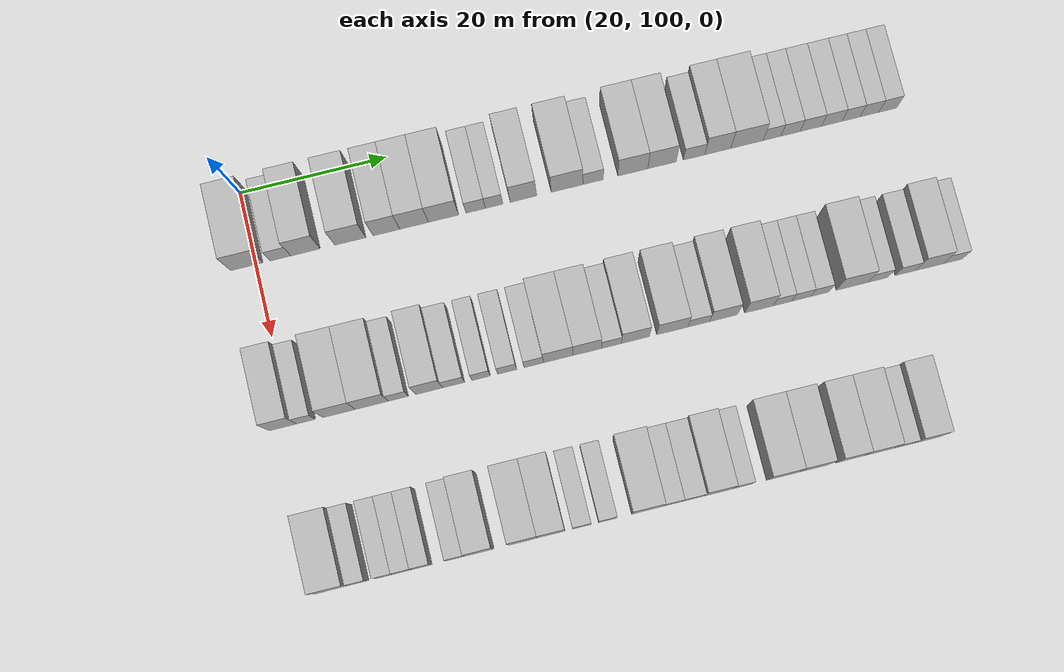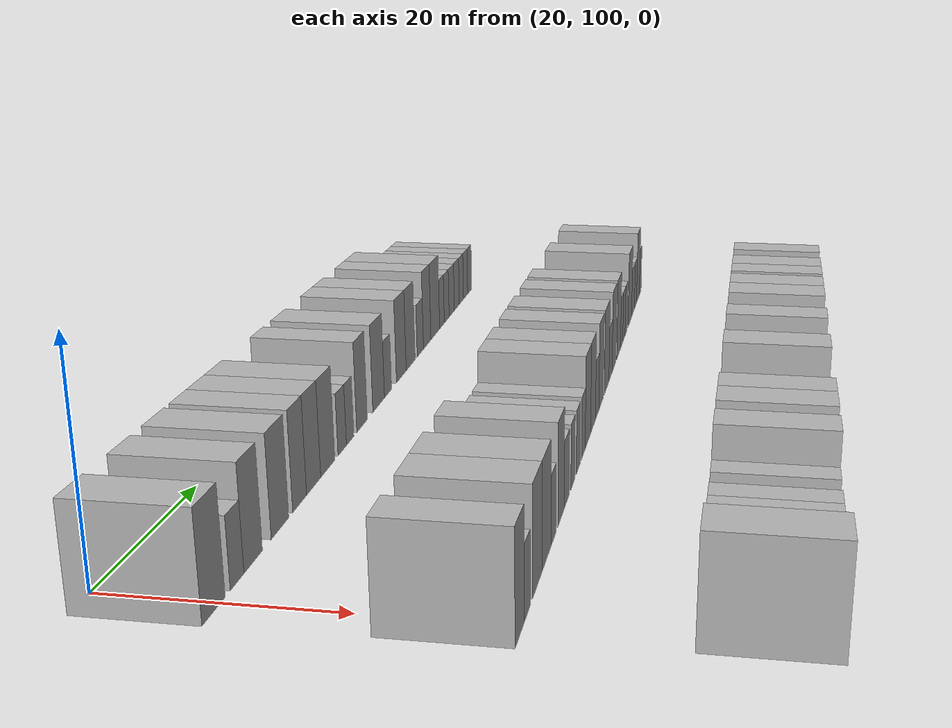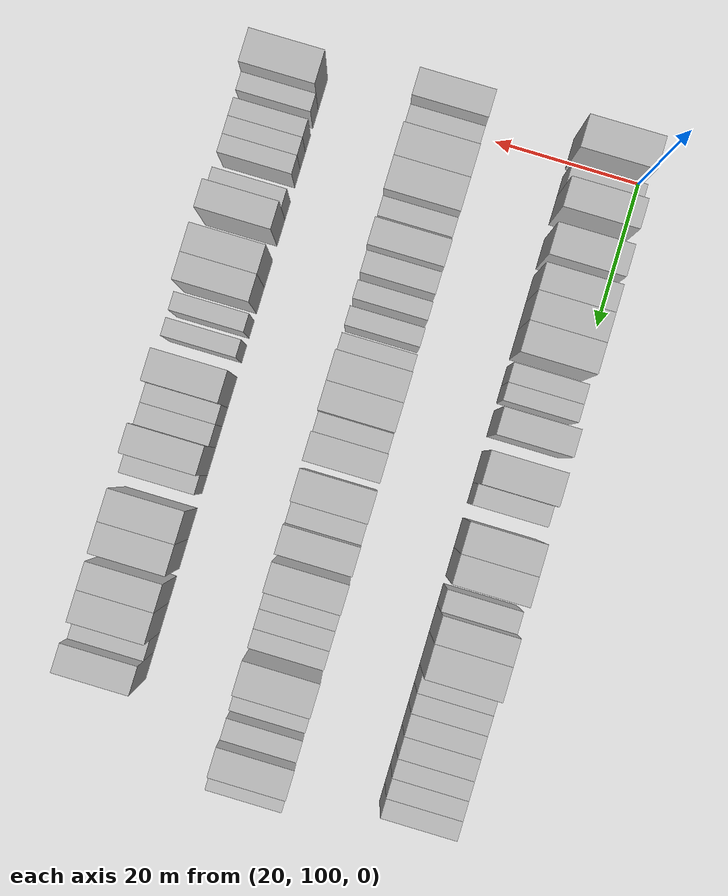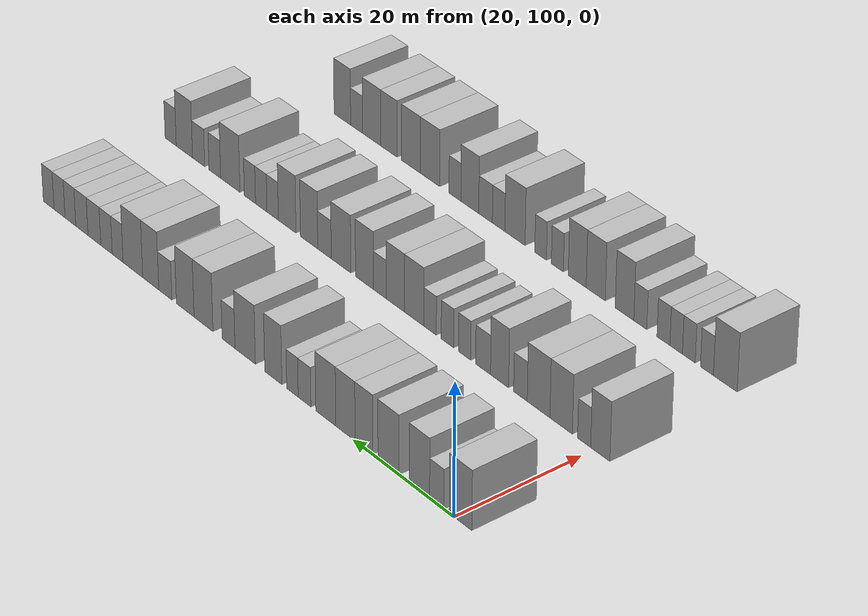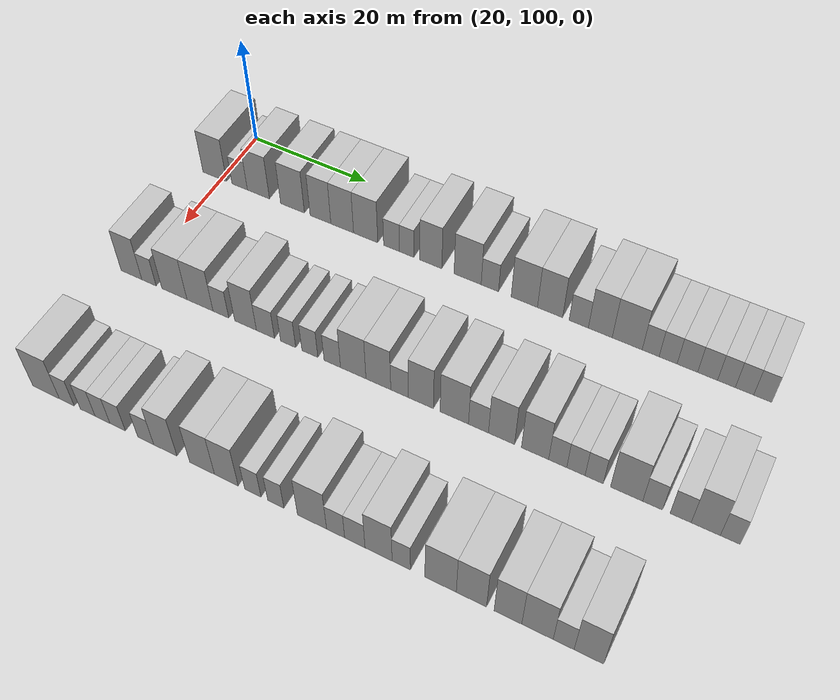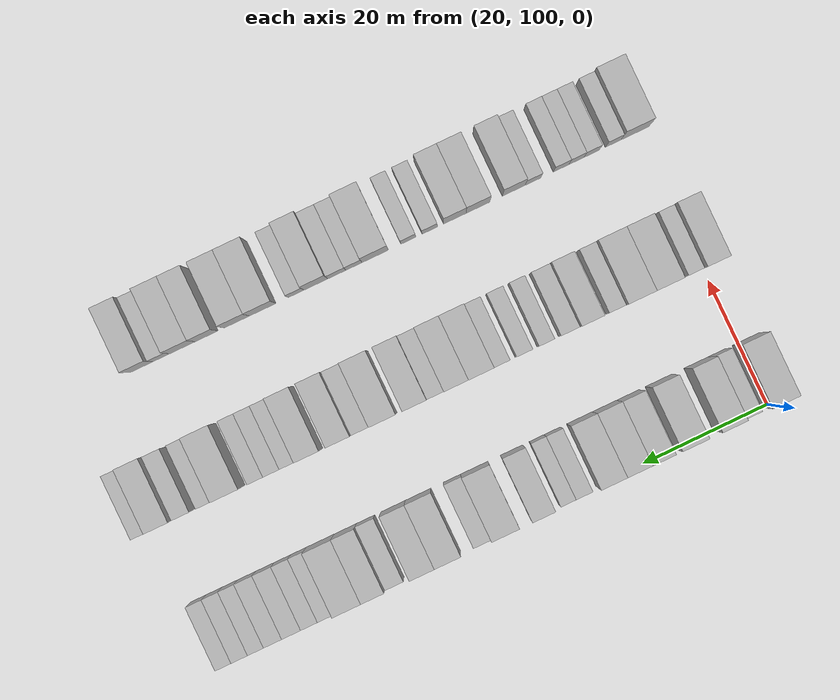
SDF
<sdf version="1.6">
 <world name="default">
  <model name="building_119">
   <static>1</static>
   <pose>25.0000 98.7656 0 0.000000 0.000000 0.000000</pose>
   <link name="link">
    <pose>0 0 4.50 0 0 0</pose>
    <collision name="collision"><geometry><box><size>10.0000 4.3630 9.0000</size></box></geometry></collision>
    <visual name="visual">
     <cast_shadows>0</cast_shadows>
     <geometry><box><size>10.0000 4.3630 9.0000</size></box></geometry>
     <material>
      <script>
       <uri>model://HANNAS_wall/materials/scripts</uri>
       <uri>model://HANNAS_wall/materials/textures</uri>
       <name>vrc/HANNAS_wall</name>
      </script>
     </material>
    </visual>
   </link>
  </model>
  <model name="building_120">
   <static>1</static>
   <pose>25.0000 103.3491 0 0.000000 0.000000 0.000000</pose>
   <link name="link">
    <pose>0 0 3.00 0 0 0</pose>
    <collision name="collision"><geometry><box><size>10.0000 2.8041 6.0000</size></box></geometry></collision>
    <visual name="visual">
     <cast_shadows>0</cast_shadows>
     <geometry><box><size>10.0000 2.8041 6.0000</size></box></geometry>
     <material>
      <script>
       <uri>model://HANNAS_wall/materials/scripts</uri>
       <uri>model://HANNAS_wall/materials/textures</uri>
       <name>vrc/HANNAS_wall</name>
      </script>
     </material>
    </visual>
   </link>
  </model>
  <model name="building_121">
   <static>1</static>
   <pose>25.0000 106.7485 0 0.000000 0.000000 0.000000</pose>
   <link name="link">
    <pose>0 0 4.50 0 0 0</pose>
    <collision name="collision"><geometry><box><size>10.0000 3.9948 9.0000</size></box></geometry></collision>
    <visual name="visual">
     <cast_shadows>0</cast_shadows>
     <geometry><box><size>10.0000 3.9948 9.0000</size></box></geometry>
     <material>
      <script>
       <uri>model://HANNAS_wall/materials/scripts</uri>
       <uri>model://HANNAS_wall/materials/textures</uri>
       <name>vrc/HANNAS_wall</name>
      </script>
     </material>
    </visual>
   </link>
  </model>
  <model name="building_122">
   <static>1</static>
   <pose>25.0000 112.8621 0 0.000000 0.000000 0.000000</pose>
   <link name="link">
    <pose>0 0 4.50 0 0 0</pose>
    <collision name="collision"><geometry><box><size>10.0000 4.2324 9.0000</size></box></geometry></collision>
    <visual name="visual">
     <cast_shadows>0</cast_shadows>
     <geometry><box><size>10.0000 4.2324 9.0000</size></box></geometry>
     <material>
      <script>
       <uri>model://HANNAS_wall/materials/scripts</uri>
       <uri>model://HANNAS_wall/materials/textures</uri>
       <name>vrc/HANNAS_wall</name>
      </script>
     </material>
    </visual>
   </link>
  </model>
  <model name="building_123">
   <static>1</static>
   <pose>25.0000 117.7877 0 0.000000 0.000000 0.000000</pose>
   <link name="link">
    <pose>0 0 4.50 0 0 0</pose>
    <collision name="collision"><geometry><box><size>10.0000 3.6188 9.0000</size></box></geometry></collision>
    <visual name="visual">
     <cast_shadows>0</cast_shadows>
     <geometry><box><size>10.0000 3.6188 9.0000</size></box></geometry>
     <material>
      <script>
       <uri>model://HANNAS_wall/materials/scripts</uri>
       <uri>model://HANNAS_wall/materials/textures</uri>
       <name>vrc/HANNAS_wall</name>
      </script>
     </material>
    </visual>
   </link>
  </model>
  <model name="building_124">
   <static>1</static>
   <pose>25.0000 121.5616 0 0.000000 0.000000 0.000000</pose>
   <link name="link">
    <pose>0 0 4.50 0 0 0</pose>
    <collision name="collision"><geometry><box><size>10.0000 3.9289 9.0000</size></box></geometry></collision>
    <visual name="visual">
     <cast_shadows>0</cast_shadows>
     <geometry><box><size>10.0000 3.9289 9.0000</size></box></geometry>
     <material>
      <script>
       <uri>model://HANNAS_wall/materials/scripts</uri>
       <uri>model://HANNAS_wall/materials/textures</uri>
       <name>vrc/HANNAS_wall</name>
      </script>
     </material>
    </visual>
   </link>
  </model>
  <model name="building_125">
   <static>1</static>
   <pose>25.0000 125.5919 0 0.000000 0.000000 0.000000</pose>
   <link name="link">
    <pose>0 0 4.50 0 0 0</pose>
    <collision name="collision"><geometry><box><size>10.0000 4.1317 9.0000</size></box></geometry></collision>
    <visual name="visual">
     <cast_shadows>0</cast_shadows>
     <geometry><box><size>10.0000 4.1317 9.0000</size></box></geometry>
     <material>
      <script>
       <uri>model://HANNAS_wall/materials/scripts</uri>
       <uri>model://HANNAS_wall/materials/textures</uri>
       <name>vrc/HANNAS_wall</name>
      </script>
     </material>
    </visual>
   </link>
  </model>
  <model name="building_126">
   <static>1</static>
   <pose>25.0000 129.9848 0 0.000000 0.000000 0.000000</pose>
   <link name="link">
    <pose>0 0 3.00 0 0 0</pose>
    <collision name="collision"><geometry><box><size>10.0000 2.6542 6.0000</size></box></geometry></collision>
    <visual name="visual">
     <cast_shadows>0</cast_shadows>
     <geometry><box><size>10.0000 2.6542 6.0000</size></box></geometry>
     <material>
      <script>
       <uri>model://HANNAS_wall/materials/scripts</uri>
       <uri>model://HANNAS_wall/materials/textures</uri>
       <name>vrc/HANNAS_wall</name>
      </script>
     </material>
    </visual>
   </link>
  </model>
  <model name="building_127">
   <static>1</static>
   <pose>25.0000 132.5161 0 0.000000 0.000000 0.000000</pose>
   <link name="link">
    <pose>0 0 3.00 0 0 0</pose>
    <collision name="collision"><geometry><box><size>10.0000 2.4083 6.0000</size></box></geometry></collision>
    <visual name="visual">
     <cast_shadows>0</cast_shadows>
     <geometry><box><size>10.0000 2.4083 6.0000</size></box></geometry>
     <material>
      <script>
       <uri>model://HANNAS_wall/materials/scripts</uri>
       <uri>model://HANNAS_wall/materials/textures</uri>
       <name>vrc/HANNAS_wall</name>
      </script>
     </material>
    </visual>
   </link>
  </model>
  <model name="building_128">
   <static>1</static>
   <pose>25.0000 136.5324 0 0.000000 0.000000 0.000000</pose>
   <link name="link">
    <pose>0 0 4.50 0 0 0</pose>
    <collision name="collision"><geometry><box><size>10.0000 3.6243 9.0000</size></box></geometry></collision>
    <visual name="visual">
     <cast_shadows>0</cast_shadows>
     <geometry><box><size>10.0000 3.6243 9.0000</size></box></geometry>
     <material>
      <script>
       <uri>model://HANNAS_wall/materials/scripts</uri>
       <uri>model://HANNAS_wall/materials/textures</uri>
       <name>vrc/HANNAS_wall</name>
      </script>
     </material>
    </visual>
   </link>
  </model>
  <model name="building_129">
   <static>1</static>
   <pose>25.0000 142.5332 0 0.000000 0.000000 0.000000</pose>
   <link name="link">
    <pose>0 0 4.50 0 0 0</pose>
    <collision name="collision"><geometry><box><size>10.0000 4.3771 9.0000</size></box></geometry></collision>
    <visual name="visual">
     <cast_shadows>0</cast_shadows>
     <geometry><box><size>10.0000 4.3771 9.0000</size></box></geometry>
     <material>
      <script>
       <uri>model://HANNAS_wall/materials/scripts</uri>
       <uri>model://HANNAS_wall/materials/textures</uri>
       <name>vrc/HANNAS_wall</name>
      </script>
     </material>
    </visual>
   </link>
  </model>
  <model name="building_130">
   <static>1</static>
   <pose>25.0000 146.1143 0 0.000000 0.000000 0.000000</pose>
   <link name="link">
    <pose>0 0 3.00 0 0 0</pose>
    <collision name="collision"><geometry><box><size>10.0000 2.7851 6.0000</size></box></geometry></collision>
    <visual name="visual">
     <cast_shadows>0</cast_shadows>
     <geometry><box><size>10.0000 2.7851 6.0000</size></box></geometry>
     <material>
      <script>
       <uri>model://HANNAS_wall/materials/scripts</uri>
       <uri>model://HANNAS_wall/materials/textures</uri>
       <name>vrc/HANNAS_wall</name>
      </script>
     </material>
    </visual>
   </link>
  </model>
  <model name="building_131">
   <static>1</static>
   <pose>25.0000 151.5737 0 0.000000 0.000000 0.000000</pose>
   <link name="link">
    <pose>0 0 4.50 0 0 0</pose>
    <collision name="collision"><geometry><box><size>10.0000 4.1338 9.0000</size></box></geometry></collision>
    <visual name="visual">
     <cast_shadows>0</cast_shadows>
     <geometry><box><size>10.0000 4.1338 9.0000</size></box></geometry>
     <material>
      <script>
       <uri>model://HANNAS_wall/materials/scripts</uri>
       <uri>model://HANNAS_wall/materials/textures</uri>
       <name>vrc/HANNAS_wall</name>
      </script>
     </material>
    </visual>
   </link>
  </model>
  <model name="building_132">
   <static>1</static>
   <pose>25.0000 155.5968 0 0.000000 0.000000 0.000000</pose>
   <link name="link">
    <pose>0 0 4.50 0 0 0</pose>
    <collision name="collision"><geometry><box><size>10.0000 3.9123 9.0000</size></box></geometry></collision>
    <visual name="visual">
     <cast_shadows>0</cast_shadows>
     <geometry><box><size>10.0000 3.9123 9.0000</size></box></geometry>
     <material>
      <script>
       <uri>model://HANNAS_wall/materials/scripts</uri>
       <uri>model://HANNAS_wall/materials/textures</uri>
       <name>vrc/HANNAS_wall</name>
      </script>
     </material>
    </visual>
   </link>
  </model>
  <model name="building_133">
   <static>1</static>
   <pose>25.0000 160.0208 0 0.000000 0.000000 0.000000</pose>
   <link name="link">
    <pose>0 0 3.00 0 0 0</pose>
    <collision name="collision"><geometry><box><size>10.0000 2.9356 6.0000</size></box></geometry></collision>
    <visual name="visual">
     <cast_shadows>0</cast_shadows>
     <geometry><box><size>10.0000 2.9356 6.0000</size></box></geometry>
     <material>
      <script>
       <uri>model://HANNAS_wall/materials/scripts</uri>
       <uri>model://HANNAS_wall/materials/textures</uri>
       <name>vrc/HANNAS_wall</name>
      </script>
     </material>
    </visual>
   </link>
  </model>
  <model name="building_134">
   <static>1</static>
   <pose>25.0000 163.2943 0 0.000000 0.000000 0.000000</pose>
   <link name="link">
    <pose>0 0 4.50 0 0 0</pose>
    <collision name="collision"><geometry><box><size>10.0000 3.6114 9.0000</size></box></geometry></collision>
    <visual name="visual">
     <cast_shadows>0</cast_shadows>
     <geometry><box><size>10.0000 3.6114 9.0000</size></box></geometry>
     <material>
      <script>
       <uri>model://HANNAS_wall/materials/scripts</uri>
       <uri>model://HANNAS_wall/materials/textures</uri>
       <name>vrc/HANNAS_wall</name>
      </script>
     </material>
    </visual>
   </link>
  </model>
  <model name="building_135">
   <static>1</static>
   <pose>25.0000 167.3402 0 0.000000 0.000000 0.000000</pose>
   <link name="link">
    <pose>0 0 4.50 0 0 0</pose>
    <collision name="collision"><geometry><box><size>10.0000 4.4805 9.0000</size></box></geometry></collision>
    <visual name="visual">
     <cast_shadows>0</cast_shadows>
     <geometry><box><size>10.0000 4.4805 9.0000</size></box></geometry>
     <material>
      <script>
       <uri>model://HANNAS_wall/materials/scripts</uri>
       <uri>model://HANNAS_wall/materials/textures</uri>
       <name>vrc/HANNAS_wall</name>
      </script>
     </material>
    </visual>
   </link>
  </model>
  <model name="building_136">
   <static>1</static>
   <pose>25.0000 170.8275 0 0.000000 0.000000 0.000000</pose>
   <link name="link">
    <pose>0 0 3.00 0 0 0</pose>
    <collision name="collision"><geometry><box><size>10.0000 2.4941 6.0000</size></box></geometry></collision>
    <visual name="visual">
     <cast_shadows>0</cast_shadows>
     <geometry><box><size>10.0000 2.4941 6.0000</size></box></geometry>
     <material>
      <script>
       <uri>model://HANNAS_wall/materials/scripts</uri>
       <uri>model://HANNAS_wall/materials/textures</uri>
       <name>vrc/HANNAS_wall</name>
      </script>
     </material>
    </visual>
   </link>
  </model>
  <model name="building_137">
   <static>1</static>
   <pose>25.0000 173.3942 0 0.000000 0.000000 0.000000</pose>
   <link name="link">
    <pose>0 0 3.00 0 0 0</pose>
    <collision name="collision"><geometry><box><size>10.0000 2.6393 6.0000</size></box></geometry></collision>
    <visual name="visual">
     <cast_shadows>0</cast_shadows>
     <geometry><box><size>10.0000 2.6393 6.0000</size></box></geometry>
     <material>
      <script>
       <uri>model://HANNAS_wall/materials/scripts</uri>
       <uri>model://HANNAS_wall/materials/textures</uri>
       <name>vrc/HANNAS_wall</name>
      </script>
     </material>
    </visual>
   </link>
  </model>
  <model name="building_138">
   <static>1</static>
   <pose>25.0000 176.2029 0 0.000000 0.000000 0.000000</pose>
   <link name="link">
    <pose>0 0 3.00 0 0 0</pose>
    <collision name="collision"><geometry><box><size>10.0000 2.9780 6.0000</size></box></geometry></collision>
    <visual name="visual">
     <cast_shadows>0</cast_shadows>
     <geometry><box><size>10.0000 2.9780 6.0000</size></box></geometry>
     <material>
      <script>
       <uri>model://HANNAS_wall/materials/scripts</uri>
       <uri>model://HANNAS_wall/materials/textures</uri>
       <name>vrc/HANNAS_wall</name>
      </script>
     </material>
    </visual>
   </link>
  </model>
  <model name="building_139">
   <static>1</static>
   <pose>25.0000 179.1201 0 0.000000 0.000000 0.000000</pose>
   <link name="link">
    <pose>0 0 3.00 0 0 0</pose>
    <collision name="collision"><geometry><box><size>10.0000 2.8564 6.0000</size></box></geometry></collision>
    <visual name="visual">
     <cast_shadows>0</cast_shadows>
     <geometry><box><size>10.0000 2.8564 6.0000</size></box></geometry>
     <material>
      <script>
       <uri>model://HANNAS_wall/materials/scripts</uri>
       <uri>model://HANNAS_wall/materials/textures</uri>
       <name>vrc/HANNAS_wall</name>
      </script>
     </material>
    </visual>
   </link>
  </model>
  <model name="building_140">
   <static>1</static>
   <pose>25.0000 181.8106 0 0.000000 0.000000 0.000000</pose>
   <link name="link">
    <pose>0 0 3.00 0 0 0</pose>
    <collision name="collision"><geometry><box><size>10.0000 2.5247 6.0000</size></box></geometry></collision>
    <visual name="visual">
     <cast_shadows>0</cast_shadows>
     <geometry><box><size>10.0000 2.5247 6.0000</size></box></geometry>
     <material>
      <script>
       <uri>model://HANNAS_wall/materials/scripts</uri>
       <uri>model://HANNAS_wall/materials/textures</uri>
       <name>vrc/HANNAS_wall</name>
      </script>
     </material>
    </visual>
   </link>
  </model>
  <model name="building_141">
   <static>1</static>
   <pose>25.0000 184.3717 0 0.000000 0.000000 0.000000</pose>
   <link name="link">
    <pose>0 0 3.00 0 0 0</pose>
    <collision name="collision"><geometry><box><size>10.0000 2.5975 6.0000</size></box></geometry></collision>
    <visual name="visual">
     <cast_shadows>0</cast_shadows>
     <geometry><box><size>10.0000 2.5975 6.0000</size></box></geometry>
     <material>
      <script>
       <uri>model://HANNAS_wall/materials/scripts</uri>
       <uri>model://HANNAS_wall/materials/textures</uri>
       <name>vrc/HANNAS_wall</name>
      </script>
     </material>
    </visual>
   </link>
  </model>
  <model name="building_142">
   <static>1</static>
   <pose>25.0000 186.9346 0 0.000000 0.000000 0.000000</pose>
   <link name="link">
    <pose>0 0 3.00 0 0 0</pose>
    <collision name="collision"><geometry><box><size>10.0000 2.5283 6.0000</size></box></geometry></collision>
    <visual name="visual">
     <cast_shadows>0</cast_shadows>
     <geometry><box><size>10.0000 2.5283 6.0000</size></box></geometry>
     <material>
      <script>
       <uri>model://HANNAS_wall/materials/scripts</uri>
       <uri>model://HANNAS_wall/materials/textures</uri>
       <name>vrc/HANNAS_wall</name>
      </script>
     </material>
    </visual>
   </link>
  </model>
  <model name="building_311">
   <static>1</static>
   <pose>47.0000 98.8146 0 0.000000 0.000000 0.000000</pose>
   <link name="link">
    <pose>0 0 4.50 0 0 0</pose>
    <collision name="collision"><geometry><box><size>10.0000 3.6631 9.0000</size></box></geometry></collision>
    <visual name="visual">
     <cast_shadows>0</cast_shadows>
     <geometry><box><size>10.0000 3.6631 9.0000</size></box></geometry>
     <material>
      <script>
       <uri>model://HANNAS_wall/materials/scripts</uri>
       <uri>model://HANNAS_wall/materials/textures</uri>
       <name>vrc/HANNAS_wall</name>
      </script>
     </material>
    </visual>
   </link>
  </model>
  <model name="building_312">
   <static>1</static>
   <pose>47.0000 101.9045 0 0.000000 0.000000 0.000000</pose>
   <link name="link">
    <pose>0 0 3.00 0 0 0</pose>
    <collision name="collision"><geometry><box><size>10.0000 2.5167 6.0000</size></box></geometry></collision>
    <visual name="visual">
     <cast_shadows>0</cast_shadows>
     <geometry><box><size>10.0000 2.5167 6.0000</size></box></geometry>
     <material>
      <script>
       <uri>model://HANNAS_wall/materials/scripts</uri>
       <uri>model://HANNAS_wall/materials/textures</uri>
       <name>vrc/HANNAS_wall</name>
      </script>
     </material>
    </visual>
   </link>
  </model>
  <model name="building_313">
   <static>1</static>
   <pose>47.0000 106.3437 0 0.000000 0.000000 0.000000</pose>
   <link name="link">
    <pose>0 0 4.50 0 0 0</pose>
    <collision name="collision"><geometry><box><size>10.0000 4.3619 9.0000</size></box></geometry></collision>
    <visual name="visual">
     <cast_shadows>0</cast_shadows>
     <geometry><box><size>10.0000 4.3619 9.0000</size></box></geometry>
     <material>
      <script>
       <uri>model://HANNAS_wall/materials/scripts</uri>
       <uri>model://HANNAS_wall/materials/textures</uri>
       <name>vrc/HANNAS_wall</name>
      </script>
     </material>
    </visual>
   </link>
  </model>
  <model name="building_314">
   <static>1</static>
   <pose>47.0000 110.7484 0 0.000000 0.000000 0.000000</pose>
   <link name="link">
    <pose>0 0 4.50 0 0 0</pose>
    <collision name="collision"><geometry><box><size>10.0000 4.4476 9.0000</size></box></geometry></collision>
    <visual name="visual">
     <cast_shadows>0</cast_shadows>
     <geometry><box><size>10.0000 4.4476 9.0000</size></box></geometry>
     <material>
      <script>
       <uri>model://HANNAS_wall/materials/scripts</uri>
       <uri>model://HANNAS_wall/materials/textures</uri>
       <name>vrc/HANNAS_wall</name>
      </script>
     </material>
    </visual>
   </link>
  </model>
  <model name="building_315">
   <static>1</static>
   <pose>47.0000 114.3064 0 0.000000 0.000000 0.000000</pose>
   <link name="link">
    <pose>0 0 3.00 0 0 0</pose>
    <collision name="collision"><geometry><box><size>10.0000 2.6683 6.0000</size></box></geometry></collision>
    <visual name="visual">
     <cast_shadows>0</cast_shadows>
     <geometry><box><size>10.0000 2.6683 6.0000</size></box></geometry>
     <material>
      <script>
       <uri>model://HANNAS_wall/materials/scripts</uri>
       <uri>model://HANNAS_wall/materials/textures</uri>
       <name>vrc/HANNAS_wall</name>
      </script>
     </material>
    </visual>
   </link>
  </model>
  <model name="building_316">
   <static>1</static>
   <pose>47.0000 118.4475 0 0.000000 0.000000 0.000000</pose>
   <link name="link">
    <pose>0 0 4.50 0 0 0</pose>
    <collision name="collision"><geometry><box><size>10.0000 3.6139 9.0000</size></box></geometry></collision>
    <visual name="visual">
     <cast_shadows>0</cast_shadows>
     <geometry><box><size>10.0000 3.6139 9.0000</size></box></geometry>
     <material>
      <script>
       <uri>model://HANNAS_wall/materials/scripts</uri>
       <uri>model://HANNAS_wall/materials/textures</uri>
       <name>vrc/HANNAS_wall</name>
      </script>
     </material>
    </visual>
   </link>
  </model>
  <model name="building_317">
   <static>1</static>
   <pose>47.0000 121.7493 0 0.000000 0.000000 0.000000</pose>
   <link name="link">
    <pose>0 0 3.00 0 0 0</pose>
    <collision name="collision"><geometry><box><size>10.0000 2.9897 6.0000</size></box></geometry></collision>
    <visual name="visual">
     <cast_shadows>0</cast_shadows>
     <geometry><box><size>10.0000 2.9897 6.0000</size></box></geometry>
     <material>
      <script>
       <uri>model://HANNAS_wall/materials/scripts</uri>
       <uri>model://HANNAS_wall/materials/textures</uri>
       <name>vrc/HANNAS_wall</name>
      </script>
     </material>
    </visual>
   </link>
  </model>
  <model name="building_318">
   <static>1</static>
   <pose>47.0000 125.4742 0 0.000000 0.000000 0.000000</pose>
   <link name="link">
    <pose>0 0 3.00 0 0 0</pose>
    <collision name="collision"><geometry><box><size>10.0000 2.4601 6.0000</size></box></geometry></collision>
    <visual name="visual">
     <cast_shadows>0</cast_shadows>
     <geometry><box><size>10.0000 2.4601 6.0000</size></box></geometry>
     <material>
      <script>
       <uri>model://HANNAS_wall/materials/scripts</uri>
       <uri>model://HANNAS_wall/materials/textures</uri>
       <name>vrc/HANNAS_wall</name>
      </script>
     </material>
    </visual>
   </link>
  </model>
  <model name="building_319">
   <static>1</static>
   <pose>47.0000 128.9877 0 0.000000 0.000000 0.000000</pose>
   <link name="link">
    <pose>0 0 3.00 0 0 0</pose>
    <collision name="collision"><geometry><box><size>10.0000 2.5668 6.0000</size></box></geometry></collision>
    <visual name="visual">
     <cast_shadows>0</cast_shadows>
     <geometry><box><size>10.0000 2.5668 6.0000</size></box></geometry>
     <material>
      <script>
       <uri>model://HANNAS_wall/materials/scripts</uri>
       <uri>model://HANNAS_wall/materials/textures</uri>
       <name>vrc/HANNAS_wall</name>
      </script>
     </material>
    </visual>
   </link>
  </model>
  <model name="building_320">
   <static>1</static>
   <pose>47.0000 132.5746 0 0.000000 0.000000 0.000000</pose>
   <link name="link">
    <pose>0 0 3.00 0 0 0</pose>
    <collision name="collision"><geometry><box><size>10.0000 2.6069 6.0000</size></box></geometry></collision>
    <visual name="visual">
     <cast_shadows>0</cast_shadows>
     <geometry><box><size>10.0000 2.6069 6.0000</size></box></geometry>
     <material>
      <script>
       <uri>model://HANNAS_wall/materials/scripts</uri>
       <uri>model://HANNAS_wall/materials/textures</uri>
       <name>vrc/HANNAS_wall</name>
      </script>
     </material>
    </visual>
   </link>
  </model>
  <model name="building_321">
   <static>1</static>
   <pose>47.0000 135.8793 0 0.000000 0.000000 0.000000</pose>
   <link name="link">
    <pose>0 0 4.50 0 0 0</pose>
    <collision name="collision"><geometry><box><size>10.0000 4.0025 9.0000</size></box></geometry></collision>
    <visual name="visual">
     <cast_shadows>0</cast_shadows>
     <geometry><box><size>10.0000 4.0025 9.0000</size></box></geometry>
     <material>
      <script>
       <uri>model://HANNAS_wall/materials/scripts</uri>
       <uri>model://HANNAS_wall/materials/textures</uri>
       <name>vrc/HANNAS_wall</name>
      </script>
     </material>
    </visual>
   </link>
  </model>
  <model name="building_322">
   <static>1</static>
   <pose>47.0000 139.8085 0 0.000000 0.000000 0.000000</pose>
   <link name="link">
    <pose>0 0 4.50 0 0 0</pose>
    <collision name="collision"><geometry><box><size>10.0000 3.8558 9.0000</size></box></geometry></collision>
    <visual name="visual">
     <cast_shadows>0</cast_shadows>
     <geometry><box><size>10.0000 3.8558 9.0000</size></box></geometry>
     <material>
      <script>
       <uri>model://HANNAS_wall/materials/scripts</uri>
       <uri>model://HANNAS_wall/materials/textures</uri>
       <name>vrc/HANNAS_wall</name>
      </script>
     </material>
    </visual>
   </link>
  </model>
  <model name="building_323">
   <static>1</static>
   <pose>47.0000 143.0876 0 0.000000 0.000000 0.000000</pose>
   <link name="link">
    <pose>0 0 3.00 0 0 0</pose>
    <collision name="collision"><geometry><box><size>10.0000 2.7024 6.0000</size></box></geometry></collision>
    <visual name="visual">
     <cast_shadows>0</cast_shadows>
     <geometry><box><size>10.0000 2.7024 6.0000</size></box></geometry>
     <material>
      <script>
       <uri>model://HANNAS_wall/materials/scripts</uri>
       <uri>model://HANNAS_wall/materials/textures</uri>
       <name>vrc/HANNAS_wall</name>
      </script>
     </material>
    </visual>
   </link>
  </model>
  <model name="building_324">
   <static>1</static>
   <pose>47.0000 146.3401 0 0.000000 0.000000 0.000000</pose>
   <link name="link">
    <pose>0 0 4.50 0 0 0</pose>
    <collision name="collision"><geometry><box><size>10.0000 3.8028 9.0000</size></box></geometry></collision>
    <visual name="visual">
     <cast_shadows>0</cast_shadows>
     <geometry><box><size>10.0000 3.8028 9.0000</size></box></geometry>
     <material>
      <script>
       <uri>model://HANNAS_wall/materials/scripts</uri>
       <uri>model://HANNAS_wall/materials/textures</uri>
       <name>vrc/HANNAS_wall</name>
      </script>
     </material>
    </visual>
   </link>
  </model>
  <model name="building_325">
   <static>1</static>
   <pose>47.0000 151.3575 0 0.000000 0.000000 0.000000</pose>
   <link name="link">
    <pose>0 0 4.50 0 0 0</pose>
    <collision name="collision"><geometry><box><size>10.0000 4.2321 9.0000</size></box></geometry></collision>
    <visual name="visual">
     <cast_shadows>0</cast_shadows>
     <geometry><box><size>10.0000 4.2321 9.0000</size></box></geometry>
     <material>
      <script>
       <uri>model://HANNAS_wall/materials/scripts</uri>
       <uri>model://HANNAS_wall/materials/textures</uri>
       <name>vrc/HANNAS_wall</name>
      </script>
     </material>
    </visual>
   </link>
  </model>
  <model name="building_326">
   <static>1</static>
   <pose>47.0000 154.9461 0 0.000000 0.000000 0.000000</pose>
   <link name="link">
    <pose>0 0 3.00 0 0 0</pose>
    <collision name="collision"><geometry><box><size>10.0000 2.9451 6.0000</size></box></geometry></collision>
    <visual name="visual">
     <cast_shadows>0</cast_shadows>
     <geometry><box><size>10.0000 2.9451 6.0000</size></box></geometry>
     <material>
      <script>
       <uri>model://HANNAS_wall/materials/scripts</uri>
       <uri>model://HANNAS_wall/materials/textures</uri>
       <name>vrc/HANNAS_wall</name>
      </script>
     </material>
    </visual>
   </link>
  </model>
  <model name="building_327">
   <static>1</static>
   <pose>47.0000 158.3156 0 0.000000 0.000000 0.000000</pose>
   <link name="link">
    <pose>0 0 4.50 0 0 0</pose>
    <collision name="collision"><geometry><box><size>10.0000 3.7939 9.0000</size></box></geometry></collision>
    <visual name="visual">
     <cast_shadows>0</cast_shadows>
     <geometry><box><size>10.0000 3.7939 9.0000</size></box></geometry>
     <material>
      <script>
       <uri>model://HANNAS_wall/materials/scripts</uri>
       <uri>model://HANNAS_wall/materials/textures</uri>
       <name>vrc/HANNAS_wall</name>
      </script>
     </material>
    </visual>
   </link>
  </model>
  <model name="building_328">
   <static>1</static>
   <pose>47.0000 163.1630 0 0.000000 0.000000 0.000000</pose>
   <link name="link">
    <pose>0 0 4.50 0 0 0</pose>
    <collision name="collision"><geometry><box><size>10.0000 3.9010 9.0000</size></box></geometry></collision>
    <visual name="visual">
     <cast_shadows>0</cast_shadows>
     <geometry><box><size>10.0000 3.9010 9.0000</size></box></geometry>
     <material>
      <script>
       <uri>model://HANNAS_wall/materials/scripts</uri>
       <uri>model://HANNAS_wall/materials/textures</uri>
       <name>vrc/HANNAS_wall</name>
      </script>
     </material>
    </visual>
   </link>
  </model>
  <model name="building_329">
   <static>1</static>
   <pose>47.0000 166.3904 0 0.000000 0.000000 0.000000</pose>
   <link name="link">
    <pose>0 0 3.00 0 0 0</pose>
    <collision name="collision"><geometry><box><size>10.0000 2.5538 6.0000</size></box></geometry></collision>
    <visual name="visual">
     <cast_shadows>0</cast_shadows>
     <geometry><box><size>10.0000 2.5538 6.0000</size></box></geometry>
     <material>
      <script>
       <uri>model://HANNAS_wall/materials/scripts</uri>
       <uri>model://HANNAS_wall/materials/textures</uri>
       <name>vrc/HANNAS_wall</name>
      </script>
     </material>
    </visual>
   </link>
  </model>
  <model name="building_330">
   <static>1</static>
   <pose>47.0000 168.9553 0 0.000000 0.000000 0.000000</pose>
   <link name="link">
    <pose>0 0 3.00 0 0 0</pose>
    <collision name="collision"><geometry><box><size>10.0000 2.5758 6.0000</size></box></geometry></collision>
    <visual name="visual">
     <cast_shadows>0</cast_shadows>
     <geometry><box><size>10.0000 2.5758 6.0000</size></box></geometry>
     <material>
      <script>
       <uri>model://HANNAS_wall/materials/scripts</uri>
       <uri>model://HANNAS_wall/materials/textures</uri>
       <name>vrc/HANNAS_wall</name>
      </script>
     </material>
    </visual>
   </link>
  </model>
  <model name="building_331">
   <static>1</static>
   <pose>47.0000 171.5025 0 0.000000 0.000000 0.000000</pose>
   <link name="link">
    <pose>0 0 3.00 0 0 0</pose>
    <collision name="collision"><geometry><box><size>10.0000 2.5185 6.0000</size></box></geometry></collision>
    <visual name="visual">
     <cast_shadows>0</cast_shadows>
     <geometry><box><size>10.0000 2.5185 6.0000</size></box></geometry>
     <material>
      <script>
       <uri>model://HANNAS_wall/materials/scripts</uri>
       <uri>model://HANNAS_wall/materials/textures</uri>
       <name>vrc/HANNAS_wall</name>
      </script>
     </material>
    </visual>
   </link>
  </model>
  <model name="building_332">
   <static>1</static>
   <pose>47.0000 175.9678 0 0.000000 0.000000 0.000000</pose>
   <link name="link">
    <pose>0 0 4.50 0 0 0</pose>
    <collision name="collision"><geometry><box><size>10.0000 4.4122 9.0000</size></box></geometry></collision>
    <visual name="visual">
     <cast_shadows>0</cast_shadows>
     <geometry><box><size>10.0000 4.4122 9.0000</size></box></geometry>
     <material>
      <script>
       <uri>model://HANNAS_wall/materials/scripts</uri>
       <uri>model://HANNAS_wall/materials/textures</uri>
       <name>vrc/HANNAS_wall</name>
      </script>
     </material>
    </visual>
   </link>
  </model>
  <model name="building_333">
   <static>1</static>
   <pose>47.0000 179.5160 0 0.000000 0.000000 0.000000</pose>
   <link name="link">
    <pose>0 0 3.00 0 0 0</pose>
    <collision name="collision"><geometry><box><size>10.0000 2.6841 6.0000</size></box></geometry></collision>
    <visual name="visual">
     <cast_shadows>0</cast_shadows>
     <geometry><box><size>10.0000 2.6841 6.0000</size></box></geometry>
     <material>
      <script>
       <uri>model://HANNAS_wall/materials/scripts</uri>
       <uri>model://HANNAS_wall/materials/textures</uri>
       <name>vrc/HANNAS_wall</name>
      </script>
     </material>
    </visual>
   </link>
  </model>
  <model name="building_334">
   <static>1</static>
   <pose>47.0000 183.2635 0 0.000000 0.000000 0.000000</pose>
   <link name="link">
    <pose>0 0 3.00 0 0 0</pose>
    <collision name="collision"><geometry><box><size>10.0000 2.8108 6.0000</size></box></geometry></collision>
    <visual name="visual">
     <cast_shadows>0</cast_shadows>
     <geometry><box><size>10.0000 2.8108 6.0000</size></box></geometry>
     <material>
      <script>
       <uri>model://HANNAS_wall/materials/scripts</uri>
       <uri>model://HANNAS_wall/materials/textures</uri>
       <name>vrc/HANNAS_wall</name>
      </script>
     </material>
    </visual>
   </link>
  </model>
  <model name="building_335">
   <static>1</static>
   <pose>47.0000 186.5843 0 0.000000 0.000000 0.000000</pose>
   <link name="link">
    <pose>0 0 4.50 0 0 0</pose>
    <collision name="collision"><geometry><box><size>10.0000 3.8307 9.0000</size></box></geometry></collision>
    <visual name="visual">
     <cast_shadows>0</cast_shadows>
     <geometry><box><size>10.0000 3.8307 9.0000</size></box></geometry>
     <material>
      <script>
       <uri>model://HANNAS_wall/materials/scripts</uri>
       <uri>model://HANNAS_wall/materials/textures</uri>
       <name>vrc/HANNAS_wall</name>
      </script>
     </material>
    </visual>
   </link>
  </model>
  <model name="building_336">
   <static>1</static>
   <pose>47.0000 189.7990 0 0.000000 0.000000 0.000000</pose>
   <link name="link">
    <pose>0 0 3.00 0 0 0</pose>
    <collision name="collision"><geometry><box><size>10.0000 2.5987 6.0000</size></box></geometry></collision>
    <visual name="visual">
     <cast_shadows>0</cast_shadows>
     <geometry><box><size>10.0000 2.5987 6.0000</size></box></geometry>
     <material>
      <script>
       <uri>model://HANNAS_wall/materials/scripts</uri>
       <uri>model://HANNAS_wall/materials/textures</uri>
       <name>vrc/HANNAS_wall</name>
      </script>
     </material>
    </visual>
   </link>
  </model>
  <model name="building_505">
   <static>1</static>
   <pose>69.0000 100.5499 0 0.000000 0.000000 0.000000</pose>
   <link name="link">
    <pose>0 0 4.50 0 0 0</pose>
    <collision name="collision"><geometry><box><size>10.0000 4.4929 9.0000</size></box></geometry></collision>
    <visual name="visual">
     <cast_shadows>0</cast_shadows>
     <geometry><box><size>10.0000 4.4929 9.0000</size></box></geometry>
     <material>
      <script>
       <uri>model://HANNAS_wall/materials/scripts</uri>
       <uri>model://HANNAS_wall/materials/textures</uri>
       <name>vrc/HANNAS_wall</name>
      </script>
     </material>
    </visual>
   </link>
  </model>
  <model name="building_506">
   <static>1</static>
   <pose>69.0000 104.0382 0 0.000000 0.000000 0.000000</pose>
   <link name="link">
    <pose>0 0 3.00 0 0 0</pose>
    <collision name="collision"><geometry><box><size>10.0000 2.4838 6.0000</size></box></geometry></collision>
    <visual name="visual">
     <cast_shadows>0</cast_shadows>
     <geometry><box><size>10.0000 2.4838 6.0000</size></box></geometry>
     <material>
      <script>
       <uri>model://HANNAS_wall/materials/scripts</uri>
       <uri>model://HANNAS_wall/materials/textures</uri>
       <name>vrc/HANNAS_wall</name>
      </script>
     </material>
    </visual>
   </link>
  </model>
  <model name="building_507">
   <static>1</static>
   <pose>69.0000 107.5068 0 0.000000 0.000000 0.000000</pose>
   <link name="link">
    <pose>0 0 3.00 0 0 0</pose>
    <collision name="collision"><geometry><box><size>10.0000 2.4533 6.0000</size></box></geometry></collision>
    <visual name="visual">
     <cast_shadows>0</cast_shadows>
     <geometry><box><size>10.0000 2.4533 6.0000</size></box></geometry>
     <material>
      <script>
       <uri>model://HANNAS_wall/materials/scripts</uri>
       <uri>model://HANNAS_wall/materials/textures</uri>
       <name>vrc/HANNAS_wall</name>
      </script>
     </material>
    </visual>
   </link>
  </model>
  <model name="building_508">
   <static>1</static>
   <pose>69.0000 109.9481 0 0.000000 0.000000 0.000000</pose>
   <link name="link">
    <pose>0 0 3.00 0 0 0</pose>
    <collision name="collision"><geometry><box><size>10.0000 2.4293 6.0000</size></box></geometry></collision>
    <visual name="visual">
     <cast_shadows>0</cast_shadows>
     <geometry><box><size>10.0000 2.4293 6.0000</size></box></geometry>
     <material>
      <script>
       <uri>model://HANNAS_wall/materials/scripts</uri>
       <uri>model://HANNAS_wall/materials/textures</uri>
       <name>vrc/HANNAS_wall</name>
      </script>
     </material>
    </visual>
   </link>
  </model>
  <model name="building_509">
   <static>1</static>
   <pose>69.0000 112.4158 0 0.000000 0.000000 0.000000</pose>
   <link name="link">
    <pose>0 0 3.00 0 0 0</pose>
    <collision name="collision"><geometry><box><size>10.0000 2.5062 6.0000</size></box></geometry></collision>
    <visual name="visual">
     <cast_shadows>0</cast_shadows>
     <geometry><box><size>10.0000 2.5062 6.0000</size></box></geometry>
     <material>
      <script>
       <uri>model://HANNAS_wall/materials/scripts</uri>
       <uri>model://HANNAS_wall/materials/textures</uri>
       <name>vrc/HANNAS_wall</name>
      </script>
     </material>
    </visual>
   </link>
  </model>
  <model name="building_510">
   <static>1</static>
   <pose>69.0000 116.9450 0 0.000000 0.000000 0.000000</pose>
   <link name="link">
    <pose>0 0 3.00 0 0 0</pose>
    <collision name="collision"><geometry><box><size>10.0000 2.5521 6.0000</size></box></geometry></collision>
    <visual name="visual">
     <cast_shadows>0</cast_shadows>
     <geometry><box><size>10.0000 2.5521 6.0000</size></box></geometry>
     <material>
      <script>
       <uri>model://HANNAS_wall/materials/scripts</uri>
       <uri>model://HANNAS_wall/materials/textures</uri>
       <name>vrc/HANNAS_wall</name>
      </script>
     </material>
    </visual>
   </link>
  </model>
  <model name="building_511">
   <static>1</static>
   <pose>69.0000 120.0617 0 0.000000 0.000000 0.000000</pose>
   <link name="link">
    <pose>0 0 4.50 0 0 0</pose>
    <collision name="collision"><geometry><box><size>10.0000 3.6814 9.0000</size></box></geometry></collision>
    <visual name="visual">
     <cast_shadows>0</cast_shadows>
     <geometry><box><size>10.0000 3.6814 9.0000</size></box></geometry>
     <material>
      <script>
       <uri>model://HANNAS_wall/materials/scripts</uri>
       <uri>model://HANNAS_wall/materials/textures</uri>
       <name>vrc/HANNAS_wall</name>
      </script>
     </material>
    </visual>
   </link>
  </model>
  <model name="building_512">
   <static>1</static>
   <pose>69.0000 125.8213 0 0.000000 0.000000 0.000000</pose>
   <link name="link">
    <pose>0 0 4.50 0 0 0</pose>
    <collision name="collision"><geometry><box><size>10.0000 3.8378 9.0000</size></box></geometry></collision>
    <visual name="visual">
     <cast_shadows>0</cast_shadows>
     <geometry><box><size>10.0000 3.8378 9.0000</size></box></geometry>
     <material>
      <script>
       <uri>model://HANNAS_wall/materials/scripts</uri>
       <uri>model://HANNAS_wall/materials/textures</uri>
       <name>vrc/HANNAS_wall</name>
      </script>
     </material>
    </visual>
   </link>
  </model>
  <model name="building_513">
   <static>1</static>
   <pose>69.0000 129.5510 0 0.000000 0.000000 0.000000</pose>
   <link name="link">
    <pose>0 0 4.50 0 0 0</pose>
    <collision name="collision"><geometry><box><size>10.0000 3.6215 9.0000</size></box></geometry></collision>
    <visual name="visual">
     <cast_shadows>0</cast_shadows>
     <geometry><box><size>10.0000 3.6215 9.0000</size></box></geometry>
     <material>
      <script>
       <uri>model://HANNAS_wall/materials/scripts</uri>
       <uri>model://HANNAS_wall/materials/textures</uri>
       <name>vrc/HANNAS_wall</name>
      </script>
     </material>
    </visual>
   </link>
  </model>
  <model name="building_514">
   <static>1</static>
   <pose>69.0000 133.5921 0 0.000000 0.000000 0.000000</pose>
   <link name="link">
    <pose>0 0 3.00 0 0 0</pose>
    <collision name="collision"><geometry><box><size>10.0000 2.4609 6.0000</size></box></geometry></collision>
    <visual name="visual">
     <cast_shadows>0</cast_shadows>
     <geometry><box><size>10.0000 2.4609 6.0000</size></box></geometry>
     <material>
      <script>
       <uri>model://HANNAS_wall/materials/scripts</uri>
       <uri>model://HANNAS_wall/materials/textures</uri>
       <name>vrc/HANNAS_wall</name>
      </script>
     </material>
    </visual>
   </link>
  </model>
  <model name="building_515">
   <static>1</static>
   <pose>69.0000 137.0283 0 0.000000 0.000000 0.000000</pose>
   <link name="link">
    <pose>0 0 3.00 0 0 0</pose>
    <collision name="collision"><geometry><box><size>10.0000 2.4114 6.0000</size></box></geometry></collision>
    <visual name="visual">
     <cast_shadows>0</cast_shadows>
     <geometry><box><size>10.0000 2.4114 6.0000</size></box></geometry>
     <material>
      <script>
       <uri>model://HANNAS_wall/materials/scripts</uri>
       <uri>model://HANNAS_wall/materials/textures</uri>
       <name>vrc/HANNAS_wall</name>
      </script>
     </material>
    </visual>
   </link>
  </model>
  <model name="building_516">
   <static>1</static>
   <pose>69.0000 142.3578 0 0.000000 0.000000 0.000000</pose>
   <link name="link">
    <pose>0 0 4.50 0 0 0</pose>
    <collision name="collision"><geometry><box><size>10.0000 4.2476 9.0000</size></box></geometry></collision>
    <visual name="visual">
     <cast_shadows>0</cast_shadows>
     <geometry><box><size>10.0000 4.2476 9.0000</size></box></geometry>
     <material>
      <script>
       <uri>model://HANNAS_wall/materials/scripts</uri>
       <uri>model://HANNAS_wall/materials/textures</uri>
       <name>vrc/HANNAS_wall</name>
      </script>
     </material>
    </visual>
   </link>
  </model>
  <model name="building_517">
   <static>1</static>
   <pose>69.0000 145.7842 0 0.000000 0.000000 0.000000</pose>
   <link name="link">
    <pose>0 0 3.00 0 0 0</pose>
    <collision name="collision"><geometry><box><size>10.0000 2.6051 6.0000</size></box></geometry></collision>
    <visual name="visual">
     <cast_shadows>0</cast_shadows>
     <geometry><box><size>10.0000 2.6051 6.0000</size></box></geometry>
     <material>
      <script>
       <uri>model://HANNAS_wall/materials/scripts</uri>
       <uri>model://HANNAS_wall/materials/textures</uri>
       <name>vrc/HANNAS_wall</name>
      </script>
     </material>
    </visual>
   </link>
  </model>
  <model name="building_518">
   <static>1</static>
   <pose>69.0000 148.5340 0 0.000000 0.000000 0.000000</pose>
   <link name="link">
    <pose>0 0 3.00 0 0 0</pose>
    <collision name="collision"><geometry><box><size>10.0000 2.8946 6.0000</size></box></geometry></collision>
    <visual name="visual">
     <cast_shadows>0</cast_shadows>
     <geometry><box><size>10.0000 2.8946 6.0000</size></box></geometry>
     <material>
      <script>
       <uri>model://HANNAS_wall/materials/scripts</uri>
       <uri>model://HANNAS_wall/materials/textures</uri>
       <name>vrc/HANNAS_wall</name>
      </script>
     </material>
    </visual>
   </link>
  </model>
  <model name="building_519">
   <static>1</static>
   <pose>69.0000 151.8939 0 0.000000 0.000000 0.000000</pose>
   <link name="link">
    <pose>0 0 4.50 0 0 0</pose>
    <collision name="collision"><geometry><box><size>10.0000 3.8251 9.0000</size></box></geometry></collision>
    <visual name="visual">
     <cast_shadows>0</cast_shadows>
     <geometry><box><size>10.0000 3.8251 9.0000</size></box></geometry>
     <material>
      <script>
       <uri>model://HANNAS_wall/materials/scripts</uri>
       <uri>model://HANNAS_wall/materials/textures</uri>
       <name>vrc/HANNAS_wall</name>
      </script>
     </material>
    </visual>
   </link>
  </model>
  <model name="building_520">
   <static>1</static>
   <pose>69.0000 155.0784 0 0.000000 0.000000 0.000000</pose>
   <link name="link">
    <pose>0 0 3.00 0 0 0</pose>
    <collision name="collision"><geometry><box><size>10.0000 2.5440 6.0000</size></box></geometry></collision>
    <visual name="visual">
     <cast_shadows>0</cast_shadows>
     <geometry><box><size>10.0000 2.5440 6.0000</size></box></geometry>
     <material>
      <script>
       <uri>model://HANNAS_wall/materials/scripts</uri>
       <uri>model://HANNAS_wall/materials/textures</uri>
       <name>vrc/HANNAS_wall</name>
      </script>
     </material>
    </visual>
   </link>
  </model>
  <model name="building_521">
   <static>1</static>
   <pose>69.0000 160.4887 0 0.000000 0.000000 0.000000</pose>
   <link name="link">
    <pose>0 0 4.50 0 0 0</pose>
    <collision name="collision"><geometry><box><size>10.0000 4.2766 9.0000</size></box></geometry></collision>
    <visual name="visual">
     <cast_shadows>0</cast_shadows>
     <geometry><box><size>10.0000 4.2766 9.0000</size></box></geometry>
     <material>
      <script>
       <uri>model://HANNAS_wall/materials/scripts</uri>
       <uri>model://HANNAS_wall/materials/textures</uri>
       <name>vrc/HANNAS_wall</name>
      </script>
     </material>
    </visual>
   </link>
  </model>
  <model name="building_522">
   <static>1</static>
   <pose>69.0000 164.6572 0 0.000000 0.000000 0.000000</pose>
   <link name="link">
    <pose>0 0 4.50 0 0 0</pose>
    <collision name="collision"><geometry><box><size>10.0000 4.0605 9.0000</size></box></geometry></collision>
    <visual name="visual">
     <cast_shadows>0</cast_shadows>
     <geometry><box><size>10.0000 4.0605 9.0000</size></box></geometry>
     <material>
      <script>
       <uri>model://HANNAS_wall/materials/scripts</uri>
       <uri>model://HANNAS_wall/materials/textures</uri>
       <name>vrc/HANNAS_wall</name>
      </script>
     </material>
    </visual>
   </link>
  </model>
  <model name="building_523">
   <static>1</static>
   <pose>69.0000 169.5118 0 0.000000 0.000000 0.000000</pose>
   <link name="link">
    <pose>0 0 4.50 0 0 0</pose>
    <collision name="collision"><geometry><box><size>10.0000 3.6487 9.0000</size></box></geometry></collision>
    <visual name="visual">
     <cast_shadows>0</cast_shadows>
     <geometry><box><size>10.0000 3.6487 9.0000</size></box></geometry>
     <material>
      <script>
       <uri>model://HANNAS_wall/materials/scripts</uri>
       <uri>model://HANNAS_wall/materials/textures</uri>
       <name>vrc/HANNAS_wall</name>
      </script>
     </material>
    </visual>
   </link>
  </model>
  <model name="building_524">
   <static>1</static>
   <pose>69.0000 173.3748 0 0.000000 0.000000 0.000000</pose>
   <link name="link">
    <pose>0 0 4.50 0 0 0</pose>
    <collision name="collision"><geometry><box><size>10.0000 4.0774 9.0000</size></box></geometry></collision>
    <visual name="visual">
     <cast_shadows>0</cast_shadows>
     <geometry><box><size>10.0000 4.0774 9.0000</size></box></geometry>
     <material>
      <script>
       <uri>model://HANNAS_wall/materials/scripts</uri>
       <uri>model://HANNAS_wall/materials/textures</uri>
       <name>vrc/HANNAS_wall</name>
      </script>
     </material>
    </visual>
   </link>
  </model>
  <model name="building_525">
   <static>1</static>
   <pose>69.0000 176.7531 0 0.000000 0.000000 0.000000</pose>
   <link name="link">
    <pose>0 0 3.00 0 0 0</pose>
    <collision name="collision"><geometry><box><size>10.0000 2.6791 6.0000</size></box></geometry></collision>
    <visual name="visual">
     <cast_shadows>0</cast_shadows>
     <geometry><box><size>10.0000 2.6791 6.0000</size></box></geometry>
     <material>
      <script>
       <uri>model://HANNAS_wall/materials/scripts</uri>
       <uri>model://HANNAS_wall/materials/textures</uri>
       <name>vrc/HANNAS_wall</name>
      </script>
     </material>
    </visual>
   </link>
  </model>
  <model name="building_526">
   <static>1</static>
   <pose>69.0000 179.9664 0 0.000000 0.000000 0.000000</pose>
   <link name="link">
    <pose>0 0 4.50 0 0 0</pose>
    <collision name="collision"><geometry><box><size>10.0000 3.7474 9.0000</size></box></geometry></collision>
    <visual name="visual">
     <cast_shadows>0</cast_shadows>
     <geometry><box><size>10.0000 3.7474 9.0000</size></box></geometry>
     <material>
      <script>
       <uri>model://HANNAS_wall/materials/scripts</uri>
       <uri>model://HANNAS_wall/materials/textures</uri>
       <name>vrc/HANNAS_wall</name>
      </script>
     </material>
    </visual>
   </link>
  </model>
 </world>
</sdf>
